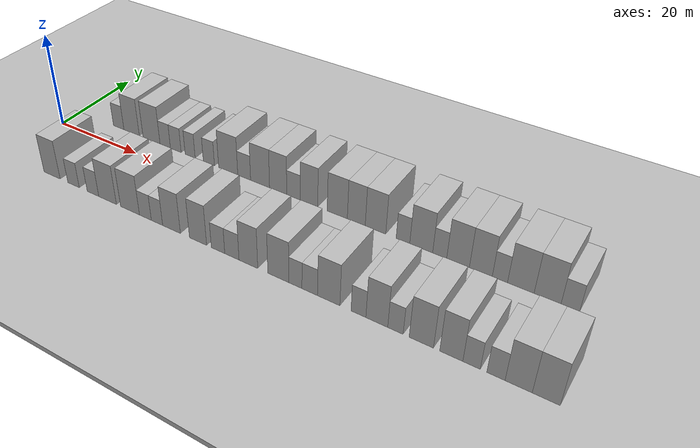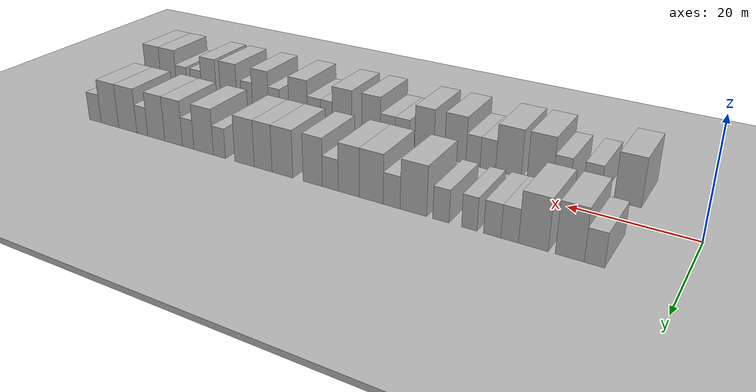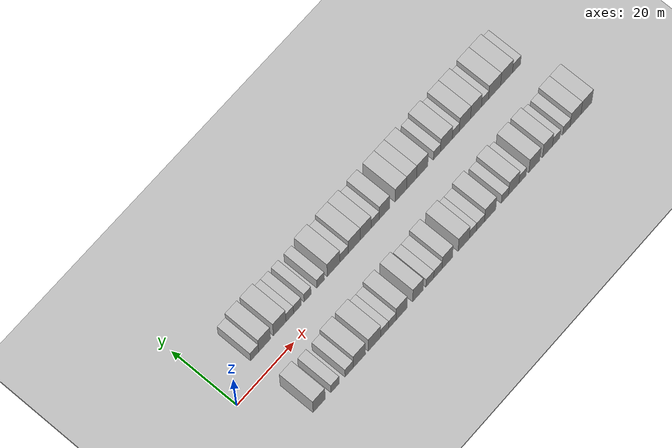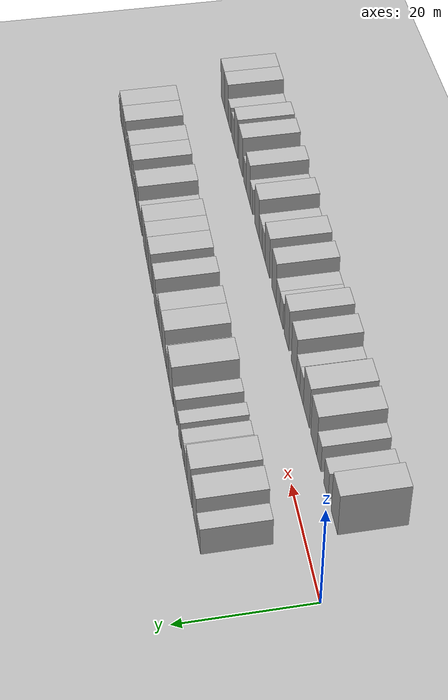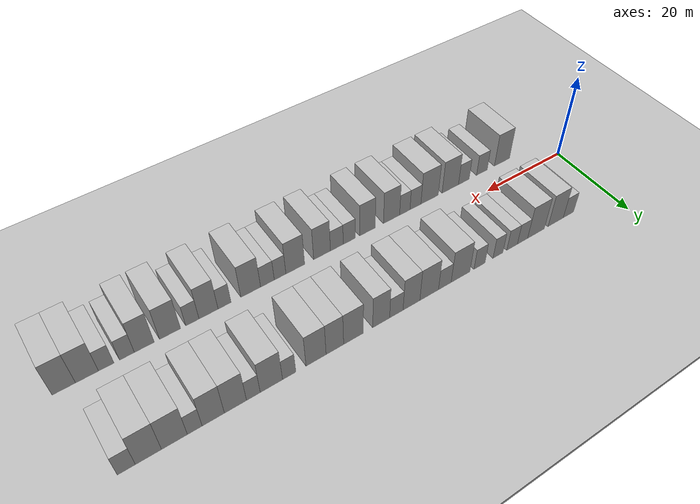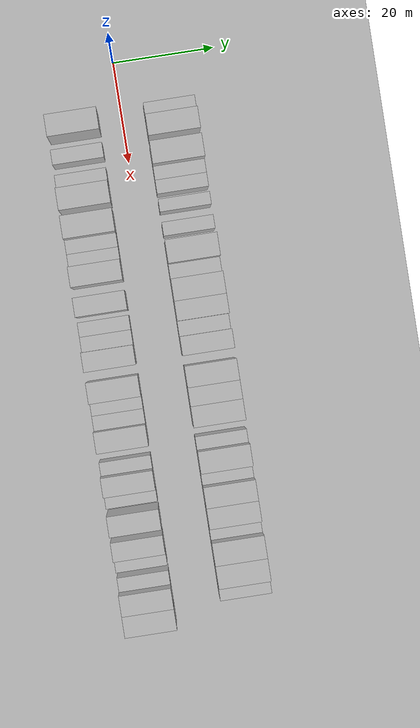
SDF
<sdf version="1.6">
 <world name="default">
  <include><name>ground_plane_1</name><uri>model://HANNAS_ground_plane</uri></include>
  <include>
   <name>ground_plane_2</name>
   <uri>model://HANNAS_ground_plane</uri>
   <pose>100 0 0  0 0 0</pose>
  </include>
  <model name="building_1">
   <static>1</static>
   <pose>11.4239 9.5000 0 0.000000 0.000000 1.570796</pose>
   <link name="link">
    <pose>0 0 3.00 0 0 0</pose>
    <collision name="collision"><geometry><box><size>10.0000 2.8477 6.0000</size></box></geometry></collision>
    <visual name="visual">
     <cast_shadows>0</cast_shadows>
     <geometry><box><size>10.0000 2.8477 6.0000</size></box></geometry>
     <material>
      <script>
       <uri>model://HANNAS_wall/materials/scripts</uri>
       <uri>model://HANNAS_wall/materials/textures</uri>
       <name>vrc/HANNAS_wall</name>
      </script>
     </material>
    </visual>
   </link>
  </model>
  <model name="building_2">
   <static>1</static>
   <pose>14.9060 9.5000 0 0.000000 0.000000 1.570796</pose>
   <link name="link">
    <pose>0 0 4.50 0 0 0</pose>
    <collision name="collision"><geometry><box><size>10.0000 4.1167 9.0000</size></box></geometry></collision>
    <visual name="visual">
     <cast_shadows>0</cast_shadows>
     <geometry><box><size>10.0000 4.1167 9.0000</size></box></geometry>
     <material>
      <script>
       <uri>model://HANNAS_wall/materials/scripts</uri>
       <uri>model://HANNAS_wall/materials/textures</uri>
       <name>vrc/HANNAS_wall</name>
      </script>
     </material>
    </visual>
   </link>
  </model>
  <model name="building_3">
   <static>1</static>
   <pose>20.1691 9.5000 0 0.000000 0.000000 1.570796</pose>
   <link name="link">
    <pose>0 0 4.50 0 0 0</pose>
    <collision name="collision"><geometry><box><size>10.0000 4.4095 9.0000</size></box></geometry></collision>
    <visual name="visual">
     <cast_shadows>0</cast_shadows>
     <geometry><box><size>10.0000 4.4095 9.0000</size></box></geometry>
     <material>
      <script>
       <uri>model://HANNAS_wall/materials/scripts</uri>
       <uri>model://HANNAS_wall/materials/textures</uri>
       <name>vrc/HANNAS_wall</name>
      </script>
     </material>
    </visual>
   </link>
  </model>
  <model name="building_4">
   <static>1</static>
   <pose>23.7036 9.5000 0 0.000000 0.000000 1.570796</pose>
   <link name="link">
    <pose>0 0 3.00 0 0 0</pose>
    <collision name="collision"><geometry><box><size>10.0000 2.6595 6.0000</size></box></geometry></collision>
    <visual name="visual">
     <cast_shadows>0</cast_shadows>
     <geometry><box><size>10.0000 2.6595 6.0000</size></box></geometry>
     <material>
      <script>
       <uri>model://HANNAS_wall/materials/scripts</uri>
       <uri>model://HANNAS_wall/materials/textures</uri>
       <name>vrc/HANNAS_wall</name>
      </script>
     </material>
    </visual>
   </link>
  </model>
  <model name="building_5">
   <static>1</static>
   <pose>26.3857 9.5000 0 0.000000 0.000000 1.570796</pose>
   <link name="link">
    <pose>0 0 3.00 0 0 0</pose>
    <collision name="collision"><geometry><box><size>10.0000 2.7047 6.0000</size></box></geometry></collision>
    <visual name="visual">
     <cast_shadows>0</cast_shadows>
     <geometry><box><size>10.0000 2.7047 6.0000</size></box></geometry>
     <material>
      <script>
       <uri>model://HANNAS_wall/materials/scripts</uri>
       <uri>model://HANNAS_wall/materials/textures</uri>
       <name>vrc/HANNAS_wall</name>
      </script>
     </material>
    </visual>
   </link>
  </model>
  <model name="building_6">
   <static>1</static>
   <pose>29.9758 9.5000 0 0.000000 0.000000 1.570796</pose>
   <link name="link">
    <pose>0 0 3.00 0 0 0</pose>
    <collision name="collision"><geometry><box><size>10.0000 2.4755 6.0000</size></box></geometry></collision>
    <visual name="visual">
     <cast_shadows>0</cast_shadows>
     <geometry><box><size>10.0000 2.4755 6.0000</size></box></geometry>
     <material>
      <script>
       <uri>model://HANNAS_wall/materials/scripts</uri>
       <uri>model://HANNAS_wall/materials/textures</uri>
       <name>vrc/HANNAS_wall</name>
      </script>
     </material>
    </visual>
   </link>
  </model>
  <model name="building_7">
   <static>1</static>
   <pose>34.5574 9.5000 0 0.000000 0.000000 1.570796</pose>
   <link name="link">
    <pose>0 0 3.00 0 0 0</pose>
    <collision name="collision"><geometry><box><size>10.0000 2.6878 6.0000</size></box></geometry></collision>
    <visual name="visual">
     <cast_shadows>0</cast_shadows>
     <geometry><box><size>10.0000 2.6878 6.0000</size></box></geometry>
     <material>
      <script>
       <uri>model://HANNAS_wall/materials/scripts</uri>
       <uri>model://HANNAS_wall/materials/textures</uri>
       <name>vrc/HANNAS_wall</name>
      </script>
     </material>
    </visual>
   </link>
  </model>
  <model name="building_8">
   <static>1</static>
   <pose>39.1502 9.5000 0 0.000000 0.000000 1.570796</pose>
   <link name="link">
    <pose>0 0 4.50 0 0 0</pose>
    <collision name="collision"><geometry><box><size>10.0000 4.4978 9.0000</size></box></geometry></collision>
    <visual name="visual">
     <cast_shadows>0</cast_shadows>
     <geometry><box><size>10.0000 4.4978 9.0000</size></box></geometry>
     <material>
      <script>
       <uri>model://HANNAS_wall/materials/scripts</uri>
       <uri>model://HANNAS_wall/materials/textures</uri>
       <name>vrc/HANNAS_wall</name>
      </script>
     </material>
    </visual>
   </link>
  </model>
  <model name="building_9">
   <static>1</static>
   <pose>42.8805 9.5000 0 0.000000 0.000000 1.570796</pose>
   <link name="link">
    <pose>0 0 3.00 0 0 0</pose>
    <collision name="collision"><geometry><box><size>10.0000 2.9629 6.0000</size></box></geometry></collision>
    <visual name="visual">
     <cast_shadows>0</cast_shadows>
     <geometry><box><size>10.0000 2.9629 6.0000</size></box></geometry>
     <material>
      <script>
       <uri>model://HANNAS_wall/materials/scripts</uri>
       <uri>model://HANNAS_wall/materials/textures</uri>
       <name>vrc/HANNAS_wall</name>
      </script>
     </material>
    </visual>
   </link>
  </model>
  <model name="building_10">
   <static>1</static>
   <pose>46.5020 9.5000 0 0.000000 0.000000 1.570796</pose>
   <link name="link">
    <pose>0 0 4.50 0 0 0</pose>
    <collision name="collision"><geometry><box><size>10.0000 4.2799 9.0000</size></box></geometry></collision>
    <visual name="visual">
     <cast_shadows>0</cast_shadows>
     <geometry><box><size>10.0000 4.2799 9.0000</size></box></geometry>
     <material>
      <script>
       <uri>model://HANNAS_wall/materials/scripts</uri>
       <uri>model://HANNAS_wall/materials/textures</uri>
       <name>vrc/HANNAS_wall</name>
      </script>
     </material>
    </visual>
   </link>
  </model>
  <model name="building_11">
   <static>1</static>
   <pose>50.5409 9.5000 0 0.000000 0.000000 1.570796</pose>
   <link name="link">
    <pose>0 0 4.50 0 0 0</pose>
    <collision name="collision"><geometry><box><size>10.0000 3.7978 9.0000</size></box></geometry></collision>
    <visual name="visual">
     <cast_shadows>0</cast_shadows>
     <geometry><box><size>10.0000 3.7978 9.0000</size></box></geometry>
     <material>
      <script>
       <uri>model://HANNAS_wall/materials/scripts</uri>
       <uri>model://HANNAS_wall/materials/textures</uri>
       <name>vrc/HANNAS_wall</name>
      </script>
     </material>
    </visual>
   </link>
  </model>
  <model name="building_12">
   <static>1</static>
   <pose>53.9195 9.5000 0 0.000000 0.000000 1.570796</pose>
   <link name="link">
    <pose>0 0 3.00 0 0 0</pose>
    <collision name="collision"><geometry><box><size>10.0000 2.9594 6.0000</size></box></geometry></collision>
    <visual name="visual">
     <cast_shadows>0</cast_shadows>
     <geometry><box><size>10.0000 2.9594 6.0000</size></box></geometry>
     <material>
      <script>
       <uri>model://HANNAS_wall/materials/scripts</uri>
       <uri>model://HANNAS_wall/materials/textures</uri>
       <name>vrc/HANNAS_wall</name>
      </script>
     </material>
    </visual>
   </link>
  </model>
  <model name="building_13">
   <static>1</static>
   <pose>57.2381 9.5000 0 0.000000 0.000000 1.570796</pose>
   <link name="link">
    <pose>0 0 4.50 0 0 0</pose>
    <collision name="collision"><geometry><box><size>10.0000 3.6779 9.0000</size></box></geometry></collision>
    <visual name="visual">
     <cast_shadows>0</cast_shadows>
     <geometry><box><size>10.0000 3.6779 9.0000</size></box></geometry>
     <material>
      <script>
       <uri>model://HANNAS_wall/materials/scripts</uri>
       <uri>model://HANNAS_wall/materials/textures</uri>
       <name>vrc/HANNAS_wall</name>
      </script>
     </material>
    </visual>
   </link>
  </model>
  <model name="building_14">
   <static>1</static>
   <pose>63.1464 9.5000 0 0.000000 0.000000 1.570796</pose>
   <link name="link">
    <pose>0 0 4.50 0 0 0</pose>
    <collision name="collision"><geometry><box><size>10.0000 4.1388 9.0000</size></box></geometry></collision>
    <visual name="visual">
     <cast_shadows>0</cast_shadows>
     <geometry><box><size>10.0000 4.1388 9.0000</size></box></geometry>
     <material>
      <script>
       <uri>model://HANNAS_wall/materials/scripts</uri>
       <uri>model://HANNAS_wall/materials/textures</uri>
       <name>vrc/HANNAS_wall</name>
      </script>
     </material>
    </visual>
   </link>
  </model>
  <model name="building_15">
   <static>1</static>
   <pose>67.0184 9.5000 0 0.000000 0.000000 1.570796</pose>
   <link name="link">
    <pose>0 0 4.50 0 0 0</pose>
    <collision name="collision"><geometry><box><size>10.0000 3.6050 9.0000</size></box></geometry></collision>
    <visual name="visual">
     <cast_shadows>0</cast_shadows>
     <geometry><box><size>10.0000 3.6050 9.0000</size></box></geometry>
     <material>
      <script>
       <uri>model://HANNAS_wall/materials/scripts</uri>
       <uri>model://HANNAS_wall/materials/textures</uri>
       <name>vrc/HANNAS_wall</name>
      </script>
     </material>
    </visual>
   </link>
  </model>
  <model name="building_16">
   <static>1</static>
   <pose>70.8393 9.5000 0 0.000000 0.000000 1.570796</pose>
   <link name="link">
    <pose>0 0 4.50 0 0 0</pose>
    <collision name="collision"><geometry><box><size>10.0000 4.0368 9.0000</size></box></geometry></collision>
    <visual name="visual">
     <cast_shadows>0</cast_shadows>
     <geometry><box><size>10.0000 4.0368 9.0000</size></box></geometry>
     <material>
      <script>
       <uri>model://HANNAS_wall/materials/scripts</uri>
       <uri>model://HANNAS_wall/materials/textures</uri>
       <name>vrc/HANNAS_wall</name>
      </script>
     </material>
    </visual>
   </link>
  </model>
  <model name="building_17">
   <static>1</static>
   <pose>76.1547 9.5000 0 0.000000 0.000000 1.570796</pose>
   <link name="link">
    <pose>0 0 3.00 0 0 0</pose>
    <collision name="collision"><geometry><box><size>10.0000 2.5940 6.0000</size></box></geometry></collision>
    <visual name="visual">
     <cast_shadows>0</cast_shadows>
     <geometry><box><size>10.0000 2.5940 6.0000</size></box></geometry>
     <material>
      <script>
       <uri>model://HANNAS_wall/materials/scripts</uri>
       <uri>model://HANNAS_wall/materials/textures</uri>
       <name>vrc/HANNAS_wall</name>
      </script>
     </material>
    </visual>
   </link>
  </model>
  <model name="building_18">
   <static>1</static>
   <pose>79.5882 9.5000 0 0.000000 0.000000 1.570796</pose>
   <link name="link">
    <pose>0 0 4.50 0 0 0</pose>
    <collision name="collision"><geometry><box><size>10.0000 4.2730 9.0000</size></box></geometry></collision>
    <visual name="visual">
     <cast_shadows>0</cast_shadows>
     <geometry><box><size>10.0000 4.2730 9.0000</size></box></geometry>
     <material>
      <script>
       <uri>model://HANNAS_wall/materials/scripts</uri>
       <uri>model://HANNAS_wall/materials/textures</uri>
       <name>vrc/HANNAS_wall</name>
      </script>
     </material>
    </visual>
   </link>
  </model>
  <model name="building_19">
   <static>1</static>
   <pose>83.0077 9.5000 0 0.000000 0.000000 1.570796</pose>
   <link name="link">
    <pose>0 0 3.00 0 0 0</pose>
    <collision name="collision"><geometry><box><size>10.0000 2.5660 6.0000</size></box></geometry></collision>
    <visual name="visual">
     <cast_shadows>0</cast_shadows>
     <geometry><box><size>10.0000 2.5660 6.0000</size></box></geometry>
     <material>
      <script>
       <uri>model://HANNAS_wall/materials/scripts</uri>
       <uri>model://HANNAS_wall/materials/textures</uri>
       <name>vrc/HANNAS_wall</name>
      </script>
     </material>
    </visual>
   </link>
  </model>
  <model name="building_20">
   <static>1</static>
   <pose>86.3215 9.5000 0 0.000000 0.000000 1.570796</pose>
   <link name="link">
    <pose>0 0 4.50 0 0 0</pose>
    <collision name="collision"><geometry><box><size>10.0000 4.0616 9.0000</size></box></geometry></collision>
    <visual name="visual">
     <cast_shadows>0</cast_shadows>
     <geometry><box><size>10.0000 4.0616 9.0000</size></box></geometry>
     <material>
      <script>
       <uri>model://HANNAS_wall/materials/scripts</uri>
       <uri>model://HANNAS_wall/materials/textures</uri>
       <name>vrc/HANNAS_wall</name>
      </script>
     </material>
    </visual>
   </link>
  </model>
  <model name="building_21">
   <static>1</static>
   <pose>90.3455 9.5000 0 0.000000 0.000000 1.570796</pose>
   <link name="link">
    <pose>0 0 4.50 0 0 0</pose>
    <collision name="collision"><geometry><box><size>10.0000 3.9864 9.0000</size></box></geometry></collision>
    <visual name="visual">
     <cast_shadows>0</cast_shadows>
     <geometry><box><size>10.0000 3.9864 9.0000</size></box></geometry>
     <material>
      <script>
       <uri>model://HANNAS_wall/materials/scripts</uri>
       <uri>model://HANNAS_wall/materials/textures</uri>
       <name>vrc/HANNAS_wall</name>
      </script>
     </material>
    </visual>
   </link>
  </model>
  <model name="building_22">
   <static>1</static>
   <pose>93.6370 9.5000 0 0.000000 0.000000 1.570796</pose>
   <link name="link">
    <pose>0 0 3.00 0 0 0</pose>
    <collision name="collision"><geometry><box><size>10.0000 2.5968 6.0000</size></box></geometry></collision>
    <visual name="visual">
     <cast_shadows>0</cast_shadows>
     <geometry><box><size>10.0000 2.5968 6.0000</size></box></geometry>
     <material>
      <script>
       <uri>model://HANNAS_wall/materials/scripts</uri>
       <uri>model://HANNAS_wall/materials/textures</uri>
       <name>vrc/HANNAS_wall</name>
      </script>
     </material>
    </visual>
   </link>
  </model>
  <model name="building_23">
   <static>1</static>
   <pose>97.1572 9.5000 0 0.000000 0.000000 1.570796</pose>
   <link name="link">
    <pose>0 0 4.50 0 0 0</pose>
    <collision name="collision"><geometry><box><size>10.0000 4.4437 9.0000</size></box></geometry></collision>
    <visual name="visual">
     <cast_shadows>0</cast_shadows>
     <geometry><box><size>10.0000 4.4437 9.0000</size></box></geometry>
     <material>
      <script>
       <uri>model://HANNAS_wall/materials/scripts</uri>
       <uri>model://HANNAS_wall/materials/textures</uri>
       <name>vrc/HANNAS_wall</name>
      </script>
     </material>
    </visual>
   </link>
  </model>
  <model name="building_24">
   <static>1</static>
   <pose>101.5641 9.5000 0 0.000000 0.000000 1.570796</pose>
   <link name="link">
    <pose>0 0 4.50 0 0 0</pose>
    <collision name="collision"><geometry><box><size>10.0000 4.3701 9.0000</size></box></geometry></collision>
    <visual name="visual">
     <cast_shadows>0</cast_shadows>
     <geometry><box><size>10.0000 4.3701 9.0000</size></box></geometry>
     <material>
      <script>
       <uri>model://HANNAS_wall/materials/scripts</uri>
       <uri>model://HANNAS_wall/materials/textures</uri>
       <name>vrc/HANNAS_wall</name>
      </script>
     </material>
    </visual>
   </link>
  </model>
  <model name="building_25">
   <static>1</static>
   <pose>105.2308 9.5000 0 0.000000 0.000000 1.570796</pose>
   <link name="link">
    <pose>0 0 3.00 0 0 0</pose>
    <collision name="collision"><geometry><box><size>10.0000 2.9633 6.0000</size></box></geometry></collision>
    <visual name="visual">
     <cast_shadows>0</cast_shadows>
     <geometry><box><size>10.0000 2.9633 6.0000</size></box></geometry>
     <material>
      <script>
       <uri>model://HANNAS_wall/materials/scripts</uri>
       <uri>model://HANNAS_wall/materials/textures</uri>
       <name>vrc/HANNAS_wall</name>
      </script>
     </material>
    </visual>
   </link>
  </model>
  <model name="building_50">
   <static>1</static>
   <pose>12.1171 -9.5000 0 0.000000 0.000000 1.570796</pose>
   <link name="link">
    <pose>0 0 4.50 0 0 0</pose>
    <collision name="collision"><geometry><box><size>10.0000 4.2343 9.0000</size></box></geometry></collision>
    <visual name="visual">
     <cast_shadows>0</cast_shadows>
     <geometry><box><size>10.0000 4.2343 9.0000</size></box></geometry>
     <material>
      <script>
       <uri>model://HANNAS_wall/materials/scripts</uri>
       <uri>model://HANNAS_wall/materials/textures</uri>
       <name>vrc/HANNAS_wall</name>
      </script>
     </material>
    </visual>
   </link>
  </model>
  <model name="building_51">
   <static>1</static>
   <pose>17.6967 -9.5000 0 0.000000 0.000000 1.570796</pose>
   <link name="link">
    <pose>0 0 3.00 0 0 0</pose>
    <collision name="collision"><geometry><box><size>10.0000 2.9249 6.0000</size></box></geometry></collision>
    <visual name="visual">
     <cast_shadows>0</cast_shadows>
     <geometry><box><size>10.0000 2.9249 6.0000</size></box></geometry>
     <material>
      <script>
       <uri>model://HANNAS_wall/materials/scripts</uri>
       <uri>model://HANNAS_wall/materials/textures</uri>
       <name>vrc/HANNAS_wall</name>
      </script>
     </material>
    </visual>
   </link>
  </model>
  <model name="building_52">
   <static>1</static>
   <pose>22.5918 -9.5000 0 0.000000 0.000000 1.570796</pose>
   <link name="link">
    <pose>0 0 3.00 0 0 0</pose>
    <collision name="collision"><geometry><box><size>10.0000 2.8653 6.0000</size></box></geometry></collision>
    <visual name="visual">
     <cast_shadows>0</cast_shadows>
     <geometry><box><size>10.0000 2.8653 6.0000</size></box></geometry>
     <material>
      <script>
       <uri>model://HANNAS_wall/materials/scripts</uri>
       <uri>model://HANNAS_wall/materials/textures</uri>
       <name>vrc/HANNAS_wall</name>
      </script>
     </material>
    </visual>
   </link>
  </model>
  <model name="building_53">
   <static>1</static>
   <pose>26.1842 -9.5000 0 0.000000 0.000000 1.570796</pose>
   <link name="link">
    <pose>0 0 4.50 0 0 0</pose>
    <collision name="collision"><geometry><box><size>10.0000 4.3195 9.0000</size></box></geometry></collision>
    <visual name="visual">
     <cast_shadows>0</cast_shadows>
     <geometry><box><size>10.0000 4.3195 9.0000</size></box></geometry>
     <material>
      <script>
       <uri>model://HANNAS_wall/materials/scripts</uri>
       <uri>model://HANNAS_wall/materials/textures</uri>
       <name>vrc/HANNAS_wall</name>
      </script>
     </material>
    </visual>
   </link>
  </model>
  <model name="building_54">
   <static>1</static>
   <pose>31.5714 -9.5000 0 0.000000 0.000000 1.570796</pose>
   <link name="link">
    <pose>0 0 4.50 0 0 0</pose>
    <collision name="collision"><geometry><box><size>10.0000 4.4551 9.0000</size></box></geometry></collision>
    <visual name="visual">
     <cast_shadows>0</cast_shadows>
     <geometry><box><size>10.0000 4.4551 9.0000</size></box></geometry>
     <material>
      <script>
       <uri>model://HANNAS_wall/materials/scripts</uri>
       <uri>model://HANNAS_wall/materials/textures</uri>
       <name>vrc/HANNAS_wall</name>
      </script>
     </material>
    </visual>
   </link>
  </model>
  <model name="building_55">
   <static>1</static>
   <pose>35.1756 -9.5000 0 0.000000 0.000000 1.570796</pose>
   <link name="link">
    <pose>0 0 3.00 0 0 0</pose>
    <collision name="collision"><geometry><box><size>10.0000 2.7532 6.0000</size></box></geometry></collision>
    <visual name="visual">
     <cast_shadows>0</cast_shadows>
     <geometry><box><size>10.0000 2.7532 6.0000</size></box></geometry>
     <material>
      <script>
       <uri>model://HANNAS_wall/materials/scripts</uri>
       <uri>model://HANNAS_wall/materials/textures</uri>
       <name>vrc/HANNAS_wall</name>
      </script>
     </material>
    </visual>
   </link>
  </model>
  <model name="building_56">
   <static>1</static>
   <pose>37.8406 -9.5000 0 0.000000 0.000000 1.570796</pose>
   <link name="link">
    <pose>0 0 3.00 0 0 0</pose>
    <collision name="collision"><geometry><box><size>10.0000 2.5767 6.0000</size></box></geometry></collision>
    <visual name="visual">
     <cast_shadows>0</cast_shadows>
     <geometry><box><size>10.0000 2.5767 6.0000</size></box></geometry>
     <material>
      <script>
       <uri>model://HANNAS_wall/materials/scripts</uri>
       <uri>model://HANNAS_wall/materials/textures</uri>
       <name>vrc/HANNAS_wall</name>
      </script>
     </material>
    </visual>
   </link>
  </model>
  <model name="building_57">
   <static>1</static>
   <pose>41.1082 -9.5000 0 0.000000 0.000000 1.570796</pose>
   <link name="link">
    <pose>0 0 4.50 0 0 0</pose>
    <collision name="collision"><geometry><box><size>10.0000 3.9584 9.0000</size></box></geometry></collision>
    <visual name="visual">
     <cast_shadows>0</cast_shadows>
     <geometry><box><size>10.0000 3.9584 9.0000</size></box></geometry>
     <material>
      <script>
       <uri>model://HANNAS_wall/materials/scripts</uri>
       <uri>model://HANNAS_wall/materials/textures</uri>
       <name>vrc/HANNAS_wall</name>
      </script>
     </material>
    </visual>
   </link>
  </model>
  <model name="building_58">
   <static>1</static>
   <pose>46.9385 -9.5000 0 0.000000 0.000000 1.570796</pose>
   <link name="link">
    <pose>0 0 4.50 0 0 0</pose>
    <collision name="collision"><geometry><box><size>10.0000 3.7024 9.0000</size></box></geometry></collision>
    <visual name="visual">
     <cast_shadows>0</cast_shadows>
     <geometry><box><size>10.0000 3.7024 9.0000</size></box></geometry>
     <material>
      <script>
       <uri>model://HANNAS_wall/materials/scripts</uri>
       <uri>model://HANNAS_wall/materials/textures</uri>
       <name>vrc/HANNAS_wall</name>
      </script>
     </material>
    </visual>
   </link>
  </model>
  <model name="building_59">
   <static>1</static>
   <pose>51.1986 -9.5000 0 0.000000 0.000000 1.570796</pose>
   <link name="link">
    <pose>0 0 3.00 0 0 0</pose>
    <collision name="collision"><geometry><box><size>10.0000 2.8177 6.0000</size></box></geometry></collision>
    <visual name="visual">
     <cast_shadows>0</cast_shadows>
     <geometry><box><size>10.0000 2.8177 6.0000</size></box></geometry>
     <material>
      <script>
       <uri>model://HANNAS_wall/materials/scripts</uri>
       <uri>model://HANNAS_wall/materials/textures</uri>
       <name>vrc/HANNAS_wall</name>
      </script>
     </material>
    </visual>
   </link>
  </model>
  <model name="building_60">
   <static>1</static>
   <pose>54.0777 -9.5000 0 0.000000 0.000000 1.570796</pose>
   <link name="link">
    <pose>0 0 3.00 0 0 0</pose>
    <collision name="collision"><geometry><box><size>10.0000 2.9405 6.0000</size></box></geometry></collision>
    <visual name="visual">
     <cast_shadows>0</cast_shadows>
     <geometry><box><size>10.0000 2.9405 6.0000</size></box></geometry>
     <material>
      <script>
       <uri>model://HANNAS_wall/materials/scripts</uri>
       <uri>model://HANNAS_wall/materials/textures</uri>
       <name>vrc/HANNAS_wall</name>
      </script>
     </material>
    </visual>
   </link>
  </model>
  <model name="building_61">
   <static>1</static>
   <pose>57.4419 -9.5000 0 0.000000 0.000000 1.570796</pose>
   <link name="link">
    <pose>0 0 4.50 0 0 0</pose>
    <collision name="collision"><geometry><box><size>10.0000 3.7878 9.0000</size></box></geometry></collision>
    <visual name="visual">
     <cast_shadows>0</cast_shadows>
     <geometry><box><size>10.0000 3.7878 9.0000</size></box></geometry>
     <material>
      <script>
       <uri>model://HANNAS_wall/materials/scripts</uri>
       <uri>model://HANNAS_wall/materials/textures</uri>
       <name>vrc/HANNAS_wall</name>
      </script>
     </material>
    </visual>
   </link>
  </model>
  <model name="building_62">
   <static>1</static>
   <pose>63.3847 -9.5000 0 0.000000 0.000000 1.570796</pose>
   <link name="link">
    <pose>0 0 4.50 0 0 0</pose>
    <collision name="collision"><geometry><box><size>10.0000 4.0979 9.0000</size></box></geometry></collision>
    <visual name="visual">
     <cast_shadows>0</cast_shadows>
     <geometry><box><size>10.0000 4.0979 9.0000</size></box></geometry>
     <material>
      <script>
       <uri>model://HANNAS_wall/materials/scripts</uri>
       <uri>model://HANNAS_wall/materials/textures</uri>
       <name>vrc/HANNAS_wall</name>
      </script>
     </material>
    </visual>
   </link>
  </model>
  <model name="building_63">
   <static>1</static>
   <pose>66.6834 -9.5000 0 0.000000 0.000000 1.570796</pose>
   <link name="link">
    <pose>0 0 3.00 0 0 0</pose>
    <collision name="collision"><geometry><box><size>10.0000 2.4995 6.0000</size></box></geometry></collision>
    <visual name="visual">
     <cast_shadows>0</cast_shadows>
     <geometry><box><size>10.0000 2.4995 6.0000</size></box></geometry>
     <material>
      <script>
       <uri>model://HANNAS_wall/materials/scripts</uri>
       <uri>model://HANNAS_wall/materials/textures</uri>
       <name>vrc/HANNAS_wall</name>
      </script>
     </material>
    </visual>
   </link>
  </model>
  <model name="building_64">
   <static>1</static>
   <pose>69.3857 -9.5000 0 0.000000 0.000000 1.570796</pose>
   <link name="link">
    <pose>0 0 3.00 0 0 0</pose>
    <collision name="collision"><geometry><box><size>10.0000 2.9050 6.0000</size></box></geometry></collision>
    <visual name="visual">
     <cast_shadows>0</cast_shadows>
     <geometry><box><size>10.0000 2.9050 6.0000</size></box></geometry>
     <material>
      <script>
       <uri>model://HANNAS_wall/materials/scripts</uri>
       <uri>model://HANNAS_wall/materials/textures</uri>
       <name>vrc/HANNAS_wall</name>
      </script>
     </material>
    </visual>
   </link>
  </model>
  <model name="building_65">
   <static>1</static>
   <pose>72.8920 -9.5000 0 0.000000 0.000000 1.570796</pose>
   <link name="link">
    <pose>0 0 4.50 0 0 0</pose>
    <collision name="collision"><geometry><box><size>10.0000 4.1077 9.0000</size></box></geometry></collision>
    <visual name="visual">
     <cast_shadows>0</cast_shadows>
     <geometry><box><size>10.0000 4.1077 9.0000</size></box></geometry>
     <material>
      <script>
       <uri>model://HANNAS_wall/materials/scripts</uri>
       <uri>model://HANNAS_wall/materials/textures</uri>
       <name>vrc/HANNAS_wall</name>
      </script>
     </material>
    </visual>
   </link>
  </model>
  <model name="building_66">
   <static>1</static>
   <pose>78.2591 -9.5000 0 0.000000 0.000000 1.570796</pose>
   <link name="link">
    <pose>0 0 3.00 0 0 0</pose>
    <collision name="collision"><geometry><box><size>10.0000 2.6265 6.0000</size></box></geometry></collision>
    <visual name="visual">
     <cast_shadows>0</cast_shadows>
     <geometry><box><size>10.0000 2.6265 6.0000</size></box></geometry>
     <material>
      <script>
       <uri>model://HANNAS_wall/materials/scripts</uri>
       <uri>model://HANNAS_wall/materials/textures</uri>
       <name>vrc/HANNAS_wall</name>
      </script>
     </material>
    </visual>
   </link>
  </model>
  <model name="building_67">
   <static>1</static>
   <pose>81.4625 -9.5000 0 0.000000 0.000000 1.570796</pose>
   <link name="link">
    <pose>0 0 4.50 0 0 0</pose>
    <collision name="collision"><geometry><box><size>10.0000 3.7802 9.0000</size></box></geometry></collision>
    <visual name="visual">
     <cast_shadows>0</cast_shadows>
     <geometry><box><size>10.0000 3.7802 9.0000</size></box></geometry>
     <material>
      <script>
       <uri>model://HANNAS_wall/materials/scripts</uri>
       <uri>model://HANNAS_wall/materials/textures</uri>
       <name>vrc/HANNAS_wall</name>
      </script>
     </material>
    </visual>
   </link>
  </model>
  <model name="building_68">
   <static>1</static>
   <pose>84.6535 -9.5000 0 0.000000 0.000000 1.570796</pose>
   <link name="link">
    <pose>0 0 3.00 0 0 0</pose>
    <collision name="collision"><geometry><box><size>10.0000 2.6018 6.0000</size></box></geometry></collision>
    <visual name="visual">
     <cast_shadows>0</cast_shadows>
     <geometry><box><size>10.0000 2.6018 6.0000</size></box></geometry>
     <material>
      <script>
       <uri>model://HANNAS_wall/materials/scripts</uri>
       <uri>model://HANNAS_wall/materials/textures</uri>
       <name>vrc/HANNAS_wall</name>
      </script>
     </material>
    </visual>
   </link>
  </model>
  <model name="building_69">
   <static>1</static>
   <pose>88.9531 -9.5000 0 0.000000 0.000000 1.570796</pose>
   <link name="link">
    <pose>0 0 4.50 0 0 0</pose>
    <collision name="collision"><geometry><box><size>10.0000 3.9973 9.0000</size></box></geometry></collision>
    <visual name="visual">
     <cast_shadows>0</cast_shadows>
     <geometry><box><size>10.0000 3.9973 9.0000</size></box></geometry>
     <material>
      <script>
       <uri>model://HANNAS_wall/materials/scripts</uri>
       <uri>model://HANNAS_wall/materials/textures</uri>
       <name>vrc/HANNAS_wall</name>
      </script>
     </material>
    </visual>
   </link>
  </model>
  <model name="building_70">
   <static>1</static>
   <pose>93.7923 -9.5000 0 0.000000 0.000000 1.570796</pose>
   <link name="link">
    <pose>0 0 4.50 0 0 0</pose>
    <collision name="collision"><geometry><box><size>10.0000 3.6812 9.0000</size></box></geometry></collision>
    <visual name="visual">
     <cast_shadows>0</cast_shadows>
     <geometry><box><size>10.0000 3.6812 9.0000</size></box></geometry>
     <material>
      <script>
       <uri>model://HANNAS_wall/materials/scripts</uri>
       <uri>model://HANNAS_wall/materials/textures</uri>
       <name>vrc/HANNAS_wall</name>
      </script>
     </material>
    </visual>
   </link>
  </model>
  <model name="building_71">
   <static>1</static>
   <pose>96.9862 -9.5000 0 0.000000 0.000000 1.570796</pose>
   <link name="link">
    <pose>0 0 3.00 0 0 0</pose>
    <collision name="collision"><geometry><box><size>10.0000 2.7066 6.0000</size></box></geometry></collision>
    <visual name="visual">
     <cast_shadows>0</cast_shadows>
     <geometry><box><size>10.0000 2.7066 6.0000</size></box></geometry>
     <material>
      <script>
       <uri>model://HANNAS_wall/materials/scripts</uri>
       <uri>model://HANNAS_wall/materials/textures</uri>
       <name>vrc/HANNAS_wall</name>
      </script>
     </material>
    </visual>
   </link>
  </model>
  <model name="building_72">
   <static>1</static>
   <pose>100.7190 -9.5000 0 0.000000 0.000000 1.570796</pose>
   <link name="link">
    <pose>0 0 3.00 0 0 0</pose>
    <collision name="collision"><geometry><box><size>10.0000 2.7590 6.0000</size></box></geometry></collision>
    <visual name="visual">
     <cast_shadows>0</cast_shadows>
     <geometry><box><size>10.0000 2.7590 6.0000</size></box></geometry>
     <material>
      <script>
       <uri>model://HANNAS_wall/materials/scripts</uri>
       <uri>model://HANNAS_wall/materials/textures</uri>
       <name>vrc/HANNAS_wall</name>
      </script>
     </material>
    </visual>
   </link>
  </model>
  <model name="building_73">
   <static>1</static>
   <pose>104.1035 -9.5000 0 0.000000 0.000000 1.570796</pose>
   <link name="link">
    <pose>0 0 4.50 0 0 0</pose>
    <collision name="collision"><geometry><box><size>10.0000 4.0100 9.0000</size></box></geometry></collision>
    <visual name="visual">
     <cast_shadows>0</cast_shadows>
     <geometry><box><size>10.0000 4.0100 9.0000</size></box></geometry>
     <material>
      <script>
       <uri>model://HANNAS_wall/materials/scripts</uri>
       <uri>model://HANNAS_wall/materials/textures</uri>
       <name>vrc/HANNAS_wall</name>
      </script>
     </material>
    </visual>
   </link>
  </model>
  <model name="building_74">
   <static>1</static>
   <pose>108.1190 -9.5000 0 0.000000 0.000000 1.570796</pose>
   <link name="link">
    <pose>0 0 4.50 0 0 0</pose>
    <collision name="collision"><geometry><box><size>10.0000 4.0210 9.0000</size></box></geometry></collision>
    <visual name="visual">
     <cast_shadows>0</cast_shadows>
     <geometry><box><size>10.0000 4.0210 9.0000</size></box></geometry>
     <material>
      <script>
       <uri>model://HANNAS_wall/materials/scripts</uri>
       <uri>model://HANNAS_wall/materials/textures</uri>
       <name>vrc/HANNAS_wall</name>
      </script>
     </material>
    </visual>
   </link>
  </model>
 </world>
</sdf>
